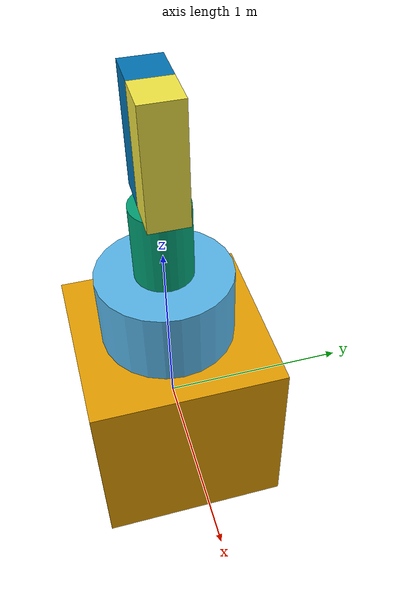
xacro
<?xml version="1.0" encoding="UTF-8"?>

<!--URDF consist of two main parts: visual and inertial. In here I have only visual part -->

<robot name="mrm" xmlns:xacro="http://www.ros.org/wiki/xacro">
  <link name="base_link">
    <visual>
      <origin rpy="0 0 0" xyz="0 0 0"/>
      <geometry>
        <box size="1 1 1"/>
      </geometry>
    </visual>
  </link>

  <joint name="base_link__link_01" type="revolute">
    <axis xyz="1 0 0"/> <!-- rotate around z-axis-->
    <limit effort="1000.0" lower="-3.14" upper="3.14" velocity="0.5"/>
    <origin rpy="0 0 0" xyz="0 0 0.5"/>  <!-- half of the height of the box 0.5-->
    <parent link="base_link"/>
    <child link="link_01"/>
  </joint>

  <link name="link_01">
    <visual>
      <origin rpy="0 0 0" xyz="0 0 0.2"/>
      <geometry>
        <cylinder radius="0.35" length="0.4"/>
      </geometry>
    </visual>
  </link>

  <joint name="link_01__link_02" type="revolute">
    <axis xyz="1 0 0"/> <!-- rotate around z-axis-->
    <limit effort="1000.0" lower="-3.14" upper="3.14" velocity="0.5"/>
    <origin rpy="0 0 0" xyz="0 0 0.4"/>  <!-- half of the height of the box 0.5-->
    <parent link="link_01"/>
    <child link="link_02"/>
  </joint>

  <link name="link_02">
    <visual>
      <origin rpy="0 0 0" xyz="0 0 0.2"/>
      <geometry>
        <cylinder radius="0.15" length="0.4"/>
      </geometry>
    </visual>
  </link>

  <joint name="link_02__gripper_a" type="prismatic">
    <axis xyz="1 0 0"/> <!-- move around z-axis-->
    <limit effort="1000.0" lower="0" upper="1.0" velocity="0.5"/>
    <origin rpy="0 0 0" xyz="0 0 0.4"/>  <!-- half of the height of the box 0.5-->
    <parent link="link_02"/>
    <child link="gripper_a"/>
  </joint>

  <joint name="link_02__gripper_b" type="prismatic">
    <axis xyz="-1 0 0"/> <!-- move around z-axis-->
    <limit effort="1000.0" lower="0" upper="1.0" velocity="0.5"/>
    <origin rpy="0 0 0" xyz="0 0 0.4"/>  <!-- half of the height of the box 0.5-->
    <parent link="link_02"/>
    <child link="gripper_b"/>
  </joint>

  <link name="gripper_a">
    <visual>
      <origin rpy="0 0 0" xyz="0.1 0 0.3"/>
      <geometry>
        <box size="0.2 0.2 0.6"/>
      </geometry>
    </visual>
  </link>

  <link name="gripper_b">
    <visual>
      <origin rpy="0 0 0" xyz="-0.1 0 0.3"/>
      <geometry>
        <box size="0.2 0.2 0.6"/>
      </geometry>
    </visual>
  </link>
</robot>
